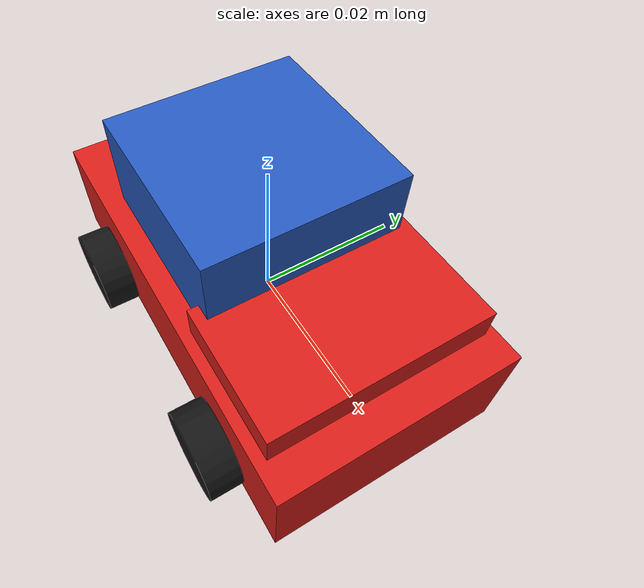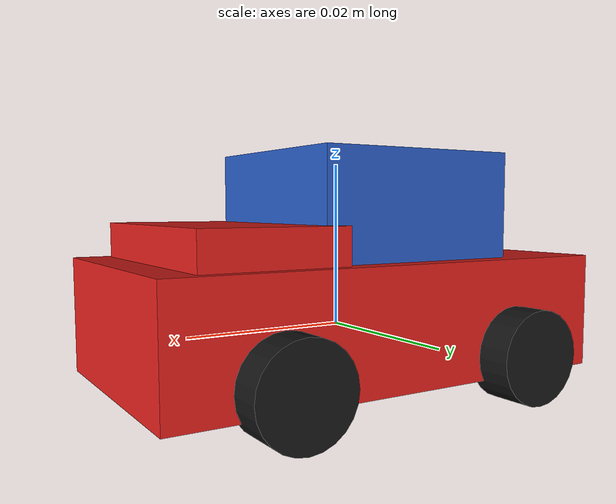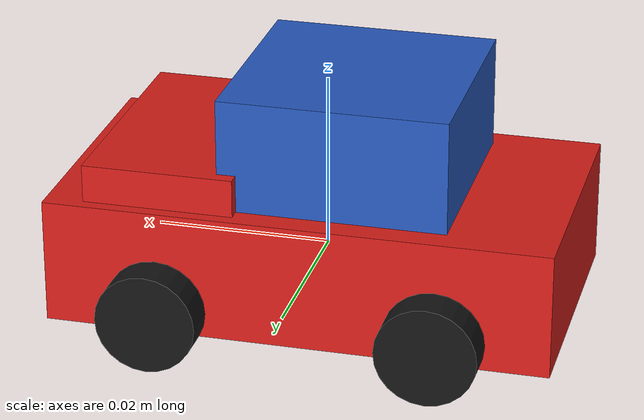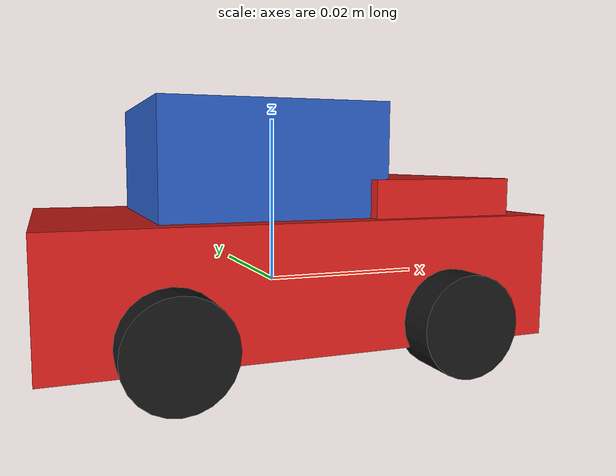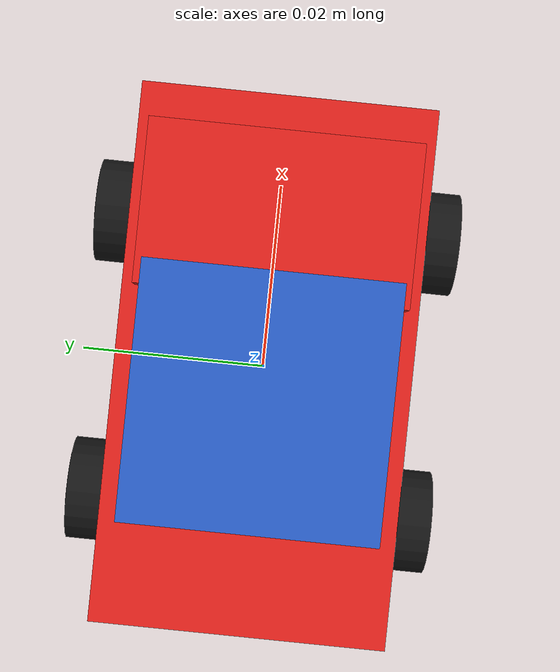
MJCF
<mujoco model="cream_cheese_mover">
  <compiler angle="radian"/>
  <asset>
    <material name="car_body" rgba="0.85 0.12 0.10 1" specular="0.4" reflectance="0.3"/>
    <material name="car_cabin" rgba="0.15 0.35 0.75 1" specular="0.4" reflectance="0.3"/>
    <material name="car_wheel" rgba="0.08 0.08 0.08 1" specular="0.4" reflectance="0.3"/>
  </asset>
  <worldbody>
    <body>
      <body name="object">
        <geom name="chassis" type="box" size="0.02857 0.01571 0.00714" pos="0.00000 0.00000 0.00143"
              material="car_body" group="1" contype="0" conaffinity="0"
              solimp="0.998 0.998 0.001" solref="0.001 1" density="100" friction="0.95 0.3 0.1"/>
        <geom name="cabin" type="box" size="0.01286 0.01286 0.00714" pos="-0.00357 0.00000 0.01429"
              material="car_cabin" group="1" contype="0" conaffinity="0"
              solimp="0.998 0.998 0.001" solref="0.001 1" density="100" friction="0.95 0.3 0.1"/>
        <geom name="hood" type="box" size="0.00857 0.01429 0.00429" pos="0.01571 0.00000 0.00857"
              material="car_body" group="1" contype="0" conaffinity="0"
              solimp="0.998 0.998 0.001" solref="0.001 1" density="100" friction="0.95 0.3 0.1"/>
        <geom name="w_fl" type="cylinder" size="0.00571 0.00286" pos="0.01571 0.01714 -0.00286" euler="1.5708 0 0"
              material="car_wheel" group="1" contype="0" conaffinity="0"
              solimp="0.998 0.998 0.001" solref="0.001 1" density="100" friction="0.95 0.3 0.1"/>
        <geom name="w_fr" type="cylinder" size="0.00571 0.00286" pos="0.01571 -0.01714 -0.00286" euler="1.5708 0 0"
              material="car_wheel" group="1" contype="0" conaffinity="0"
              solimp="0.998 0.998 0.001" solref="0.001 1" density="100" friction="0.95 0.3 0.1"/>
        <geom name="w_rl" type="cylinder" size="0.00571 0.00286" pos="-0.01571 0.01714 -0.00286" euler="1.5708 0 0"
              material="car_wheel" group="1" contype="0" conaffinity="0"
              solimp="0.998 0.998 0.001" solref="0.001 1" density="100" friction="0.95 0.3 0.1"/>
        <geom name="w_rr" type="cylinder" size="0.00571 0.00286" pos="-0.01571 -0.01714 -0.00286" euler="1.5708 0 0"
              material="car_wheel" group="1" contype="0" conaffinity="0"
              solimp="0.998 0.998 0.001" solref="0.001 1" density="100" friction="0.95 0.3 0.1"/>
        <geom type="box" size="0.03000 0.02000 0.01286" pos="0.00000 0.00000 0.00357" group="0"
              rgba="0.8 0.2 0.2 0.0" solimp="0.998 0.998 0.001" solref="0.001 1"
              density="100" friction="0.95 0.3 0.1"/>
      </body>
      <site rgba="0 0 0 0" size="0.005" pos="0.00000 0.00000 -0.02500" name="bottom_site" />
      <site rgba="0 0 0 0" size="0.005" pos="0.00000 0.00000 0.02500" name="top_site" />
      <site rgba="0 0 0 0" size="0.005" pos="0.03000 0.03000 0.00000" name="horizontal_radius_site" />
    </body>
  </worldbody>
</mujoco>
